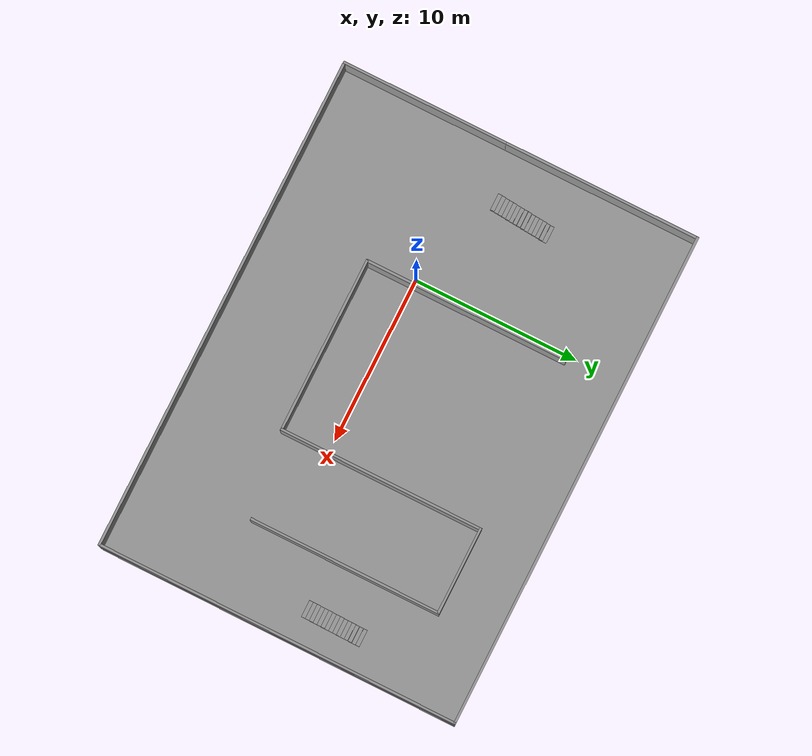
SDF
<?xml version='1.0'?>
<sdf version='1.7'>
  <model name='test'>
    <pose>6.29552 2.1311 0 0 -0 0</pose>
    <link name='Floor_0'>
      <collision name='Floor_0_Collision'>
        <geometry>
          <box>
            <size>29.75 21.75 0.1</size>
          </box>
        </geometry>
        <pose>0 0 0.05 0 -0 0</pose>
      </collision>
      <visual name='Floor_0_Visual'>
        <pose>0 0 0.05 0 -0 0</pose>
        <geometry>
          <box>
            <size>29.75 21.75 0.1</size>
          </box>
        </geometry>
        <material>
          <script>
            <uri>file://media/materials/scripts/gazebo.material</uri>
            <name>Gazebo/Grey</name>
          </script>
          <ambient>1 1 1 1</ambient>
        </material>
        <meta>
          <layer>1</layer>
        </meta>
      </visual>
      <pose>-0 0 2.5 0 -0 0</pose>
    </link>
    <link name='Stairs_0'>
      <visual name='Stairs_0_Visual_0'>
        <pose>-11.6118 3.36597 2.58333 0 -0 0</pose>
        <geometry>
          <box>
            <size>1 0.233333 0.166667</size>
          </box>
        </geometry>
        <material>
          <script>
            <uri>file://media/materials/scripts/gazebo.material</uri>
            <name>Gazebo/Grey</name>
          </script>
          <ambient>1 1 1 1</ambient>
        </material>
        <meta>
          <layer>1</layer>
        </meta>
      </visual>
      <collision name='Stairs_0_Collision_0'>
        <geometry>
          <box>
            <size>1 0.233333 0.166667</size>
          </box>
        </geometry>
        <pose>-11.6118 3.36597 2.58333 0 -0 0</pose>
      </collision>
      <visual name='Stairs_0_Visual_1'>
        <pose>-11.6118 3.13264 2.75 0 -0 0</pose>
        <geometry>
          <box>
            <size>1 0.233333 0.166667</size>
          </box>
        </geometry>
        <material>
          <script>
            <uri>file://media/materials/scripts/gazebo.material</uri>
            <name>Gazebo/Grey</name>
          </script>
          <ambient>1 1 1 1</ambient>
        </material>
        <meta>
          <layer>1</layer>
        </meta>
      </visual>
      <collision name='Stairs_0_Collision_1'>
        <geometry>
          <box>
            <size>1 0.233333 0.166667</size>
          </box>
        </geometry>
        <pose>-11.6118 3.13264 2.75 0 -0 0</pose>
      </collision>
      <visual name='Stairs_0_Visual_2'>
        <pose>-11.6118 2.8993 2.91667 0 -0 0</pose>
        <geometry>
          <box>
            <size>1 0.233333 0.166667</size>
          </box>
        </geometry>
        <material>
          <script>
            <uri>file://media/materials/scripts/gazebo.material</uri>
            <name>Gazebo/Grey</name>
          </script>
          <ambient>1 1 1 1</ambient>
        </material>
        <meta>
          <layer>1</layer>
        </meta>
      </visual>
      <collision name='Stairs_0_Collision_2'>
        <geometry>
          <box>
            <size>1 0.233333 0.166667</size>
          </box>
        </geometry>
        <pose>-11.6118 2.8993 2.91667 0 -0 0</pose>
      </collision>
      <visual name='Stairs_0_Visual_3'>
        <pose>-11.6118 2.66597 3.08333 0 -0 0</pose>
        <geometry>
          <box>
            <size>1 0.233333 0.166667</size>
          </box>
        </geometry>
        <material>
          <script>
            <uri>file://media/materials/scripts/gazebo.material</uri>
            <name>Gazebo/Grey</name>
          </script>
          <ambient>1 1 1 1</ambient>
        </material>
        <meta>
          <layer>1</layer>
        </meta>
      </visual>
      <collision name='Stairs_0_Collision_3'>
        <geometry>
          <box>
            <size>1 0.233333 0.166667</size>
          </box>
        </geometry>
        <pose>-11.6118 2.66597 3.08333 0 -0 0</pose>
      </collision>
      <visual name='Stairs_0_Visual_4'>
        <pose>-11.6118 2.43263 3.25 0 -0 0</pose>
        <geometry>
          <box>
            <size>1 0.233333 0.166667</size>
          </box>
        </geometry>
        <material>
          <script>
            <uri>file://media/materials/scripts/gazebo.material</uri>
            <name>Gazebo/Grey</name>
          </script>
          <ambient>1 1 1 1</ambient>
        </material>
        <meta>
          <layer>1</layer>
        </meta>
      </visual>
      <collision name='Stairs_0_Collision_4'>
        <geometry>
          <box>
            <size>1 0.233333 0.166667</size>
          </box>
        </geometry>
        <pose>-11.6118 2.43263 3.25 0 -0 0</pose>
      </collision>
      <visual name='Stairs_0_Visual_5'>
        <pose>-11.6118 2.1993 3.41667 0 -0 0</pose>
        <geometry>
          <box>
            <size>1 0.233333 0.166667</size>
          </box>
        </geometry>
        <material>
          <script>
            <uri>file://media/materials/scripts/gazebo.material</uri>
            <name>Gazebo/Grey</name>
          </script>
          <ambient>1 1 1 1</ambient>
        </material>
        <meta>
          <layer>1</layer>
        </meta>
      </visual>
      <collision name='Stairs_0_Collision_5'>
        <geometry>
          <box>
            <size>1 0.233333 0.166667</size>
          </box>
        </geometry>
        <pose>-11.6118 2.1993 3.41667 0 -0 0</pose>
      </collision>
      <visual name='Stairs_0_Visual_6'>
        <pose>-11.6118 1.96597 3.58333 0 -0 0</pose>
        <geometry>
          <box>
            <size>1 0.233333 0.166667</size>
          </box>
        </geometry>
        <material>
          <script>
            <uri>file://media/materials/scripts/gazebo.material</uri>
            <name>Gazebo/Grey</name>
          </script>
          <ambient>1 1 1 1</ambient>
        </material>
        <meta>
          <layer>1</layer>
        </meta>
      </visual>
      <collision name='Stairs_0_Collision_6'>
        <geometry>
          <box>
            <size>1 0.233333 0.166667</size>
          </box>
        </geometry>
        <pose>-11.6118 1.96597 3.58333 0 -0 0</pose>
      </collision>
      <visual name='Stairs_0_Visual_7'>
        <pose>-11.6118 1.73263 3.75 0 -0 0</pose>
        <geometry>
          <box>
            <size>1 0.233333 0.166667</size>
          </box>
        </geometry>
        <material>
          <script>
            <uri>file://media/materials/scripts/gazebo.material</uri>
            <name>Gazebo/Grey</name>
          </script>
          <ambient>1 1 1 1</ambient>
        </material>
        <meta>
          <layer>1</layer>
        </meta>
      </visual>
      <collision name='Stairs_0_Collision_7'>
        <geometry>
          <box>
            <size>1 0.233333 0.166667</size>
          </box>
        </geometry>
        <pose>-11.6118 1.73263 3.75 0 -0 0</pose>
      </collision>
      <visual name='Stairs_0_Visual_8'>
        <pose>-11.6118 1.4993 3.91667 0 -0 0</pose>
        <geometry>
          <box>
            <size>1 0.233333 0.166667</size>
          </box>
        </geometry>
        <material>
          <script>
            <uri>file://media/materials/scripts/gazebo.material</uri>
            <name>Gazebo/Grey</name>
          </script>
          <ambient>1 1 1 1</ambient>
        </material>
        <meta>
          <layer>1</layer>
        </meta>
      </visual>
      <collision name='Stairs_0_Collision_8'>
        <geometry>
          <box>
            <size>1 0.233333 0.166667</size>
          </box>
        </geometry>
        <pose>-11.6118 1.4993 3.91667 0 -0 0</pose>
      </collision>
      <visual name='Stairs_0_Visual_9'>
        <pose>-11.6118 1.26597 4.08333 0 -0 0</pose>
        <geometry>
          <box>
            <size>1 0.233333 0.166667</size>
          </box>
        </geometry>
        <material>
          <script>
            <uri>file://media/materials/scripts/gazebo.material</uri>
            <name>Gazebo/Grey</name>
          </script>
          <ambient>1 1 1 1</ambient>
        </material>
        <meta>
          <layer>1</layer>
        </meta>
      </visual>
      <collision name='Stairs_0_Collision_9'>
        <geometry>
          <box>
            <size>1 0.233333 0.166667</size>
          </box>
        </geometry>
        <pose>-11.6118 1.26597 4.08333 0 -0 0</pose>
      </collision>
      <visual name='Stairs_0_Visual_10'>
        <pose>-11.6118 1.03263 4.25 0 -0 0</pose>
        <geometry>
          <box>
            <size>1 0.233333 0.166667</size>
          </box>
        </geometry>
        <material>
          <script>
            <uri>file://media/materials/scripts/gazebo.material</uri>
            <name>Gazebo/Grey</name>
          </script>
          <ambient>1 1 1 1</ambient>
        </material>
        <meta>
          <layer>1</layer>
        </meta>
      </visual>
      <collision name='Stairs_0_Collision_10'>
        <geometry>
          <box>
            <size>1 0.233333 0.166667</size>
          </box>
        </geometry>
        <pose>-11.6118 1.03263 4.25 0 -0 0</pose>
      </collision>
      <visual name='Stairs_0_Visual_11'>
        <pose>-11.6118 0.799302 4.41667 0 -0 0</pose>
        <geometry>
          <box>
            <size>1 0.233333 0.166667</size>
          </box>
        </geometry>
        <material>
          <script>
            <uri>file://media/materials/scripts/gazebo.material</uri>
            <name>Gazebo/Grey</name>
          </script>
          <ambient>1 1 1 1</ambient>
        </material>
        <meta>
          <layer>1</layer>
        </meta>
      </visual>
      <collision name='Stairs_0_Collision_11'>
        <geometry>
          <box>
            <size>1 0.233333 0.166667</size>
          </box>
        </geometry>
        <pose>-11.6118 0.799302 4.41667 0 -0 0</pose>
      </collision>
      <visual name='Stairs_0_Visual_12'>
        <pose>-11.6118 0.565968 4.58333 0 -0 0</pose>
        <geometry>
          <box>
            <size>1 0.233333 0.166667</size>
          </box>
        </geometry>
        <material>
          <script>
            <uri>file://media/materials/scripts/gazebo.material</uri>
            <name>Gazebo/Grey</name>
          </script>
          <ambient>1 1 1 1</ambient>
        </material>
        <meta>
          <layer>1</layer>
        </meta>
      </visual>
      <collision name='Stairs_0_Collision_12'>
        <geometry>
          <box>
            <size>1 0.233333 0.166667</size>
          </box>
        </geometry>
        <pose>-11.6118 0.565968 4.58333 0 -0 0</pose>
      </collision>
      <visual name='Stairs_0_Visual_13'>
        <pose>-11.6118 0.332635 4.75 0 -0 0</pose>
        <geometry>
          <box>
            <size>1 0.233333 0.166667</size>
          </box>
        </geometry>
        <material>
          <script>
            <uri>file://media/materials/scripts/gazebo.material</uri>
            <name>Gazebo/Grey</name>
          </script>
          <ambient>1 1 1 1</ambient>
        </material>
        <meta>
          <layer>1</layer>
        </meta>
      </visual>
      <collision name='Stairs_0_Collision_13'>
        <geometry>
          <box>
            <size>1 0.233333 0.166667</size>
          </box>
        </geometry>
        <pose>-11.6118 0.332635 4.75 0 -0 0</pose>
      </collision>
      <visual name='Stairs_0_Visual_14'>
        <pose>-11.6118 0.099302 4.91667 0 -0 0</pose>
        <geometry>
          <box>
            <size>1 0.233333 0.166667</size>
          </box>
        </geometry>
        <material>
          <script>
            <uri>file://media/materials/scripts/gazebo.material</uri>
            <name>Gazebo/Grey</name>
          </script>
          <ambient>1 1 1 1</ambient>
        </material>
        <meta>
          <layer>1</layer>
        </meta>
      </visual>
      <collision name='Stairs_0_Collision_14'>
        <geometry>
          <box>
            <size>1 0.233333 0.166667</size>
          </box>
        </geometry>
        <pose>-11.6118 0.099302 4.91667 0 -0 0</pose>
      </collision>
    </link>
    <link name='Stairs_1'>
      <visual name='Stairs_1_Visual_0'>
        <pose>12.8702 4.1443 2.58333 0 -0 0</pose>
        <geometry>
          <box>
            <size>1 0.233333 0.166667</size>
          </box>
        </geometry>
        <material>
          <script>
            <uri>file://media/materials/scripts/gazebo.material</uri>
            <name>Gazebo/Grey</name>
          </script>
          <ambient>1 1 1 1</ambient>
        </material>
        <meta>
          <layer>1</layer>
        </meta>
      </visual>
      <collision name='Stairs_1_Collision_0'>
        <geometry>
          <box>
            <size>1 0.233333 0.166667</size>
          </box>
        </geometry>
        <pose>12.8702 4.1443 2.58333 0 -0 0</pose>
      </collision>
      <visual name='Stairs_1_Visual_1'>
        <pose>12.8702 3.91096 2.75 0 -0 0</pose>
        <geometry>
          <box>
            <size>1 0.233333 0.166667</size>
          </box>
        </geometry>
        <material>
          <script>
            <uri>file://media/materials/scripts/gazebo.material</uri>
            <name>Gazebo/Grey</name>
          </script>
          <ambient>1 1 1 1</ambient>
        </material>
        <meta>
          <layer>1</layer>
        </meta>
      </visual>
      <collision name='Stairs_1_Collision_1'>
        <geometry>
          <box>
            <size>1 0.233333 0.166667</size>
          </box>
        </geometry>
        <pose>12.8702 3.91096 2.75 0 -0 0</pose>
      </collision>
      <visual name='Stairs_1_Visual_2'>
        <pose>12.8702 3.67763 2.91667 0 -0 0</pose>
        <geometry>
          <box>
            <size>1 0.233333 0.166667</size>
          </box>
        </geometry>
        <material>
          <script>
            <uri>file://media/materials/scripts/gazebo.material</uri>
            <name>Gazebo/Grey</name>
          </script>
          <ambient>1 1 1 1</ambient>
        </material>
        <meta>
          <layer>1</layer>
        </meta>
      </visual>
      <collision name='Stairs_1_Collision_2'>
        <geometry>
          <box>
            <size>1 0.233333 0.166667</size>
          </box>
        </geometry>
        <pose>12.8702 3.67763 2.91667 0 -0 0</pose>
      </collision>
      <visual name='Stairs_1_Visual_3'>
        <pose>12.8702 3.4443 3.08333 0 -0 0</pose>
        <geometry>
          <box>
            <size>1 0.233333 0.166667</size>
          </box>
        </geometry>
        <material>
          <script>
            <uri>file://media/materials/scripts/gazebo.material</uri>
            <name>Gazebo/Grey</name>
          </script>
          <ambient>1 1 1 1</ambient>
        </material>
        <meta>
          <layer>1</layer>
        </meta>
      </visual>
      <collision name='Stairs_1_Collision_3'>
        <geometry>
          <box>
            <size>1 0.233333 0.166667</size>
          </box>
        </geometry>
        <pose>12.8702 3.4443 3.08333 0 -0 0</pose>
      </collision>
      <visual name='Stairs_1_Visual_4'>
        <pose>12.8702 3.21096 3.25 0 -0 0</pose>
        <geometry>
          <box>
            <size>1 0.233333 0.166667</size>
          </box>
        </geometry>
        <material>
          <script>
            <uri>file://media/materials/scripts/gazebo.material</uri>
            <name>Gazebo/Grey</name>
          </script>
          <ambient>1 1 1 1</ambient>
        </material>
        <meta>
          <layer>1</layer>
        </meta>
      </visual>
      <collision name='Stairs_1_Collision_4'>
        <geometry>
          <box>
            <size>1 0.233333 0.166667</size>
          </box>
        </geometry>
        <pose>12.8702 3.21096 3.25 0 -0 0</pose>
      </collision>
      <visual name='Stairs_1_Visual_5'>
        <pose>12.8702 2.97763 3.41667 0 -0 0</pose>
        <geometry>
          <box>
            <size>1 0.233333 0.166667</size>
          </box>
        </geometry>
        <material>
          <script>
            <uri>file://media/materials/scripts/gazebo.material</uri>
            <name>Gazebo/Grey</name>
          </script>
          <ambient>1 1 1 1</ambient>
        </material>
        <meta>
          <layer>1</layer>
        </meta>
      </visual>
      <collision name='Stairs_1_Collision_5'>
        <geometry>
          <box>
            <size>1 0.233333 0.166667</size>
          </box>
        </geometry>
        <pose>12.8702 2.97763 3.41667 0 -0 0</pose>
      </collision>
      <visual name='Stairs_1_Visual_6'>
        <pose>12.8702 2.7443 3.58333 0 -0 0</pose>
        <geometry>
          <box>
            <size>1 0.233333 0.166667</size>
          </box>
        </geometry>
        <material>
          <script>
            <uri>file://media/materials/scripts/gazebo.material</uri>
            <name>Gazebo/Grey</name>
          </script>
          <ambient>1 1 1 1</ambient>
        </material>
        <meta>
          <layer>1</layer>
        </meta>
      </visual>
      <collision name='Stairs_1_Collision_6'>
        <geometry>
          <box>
            <size>1 0.233333 0.166667</size>
          </box>
        </geometry>
        <pose>12.8702 2.7443 3.58333 0 -0 0</pose>
      </collision>
      <visual name='Stairs_1_Visual_7'>
        <pose>12.8702 2.51096 3.75 0 -0 0</pose>
        <geometry>
          <box>
            <size>1 0.233333 0.166667</size>
          </box>
        </geometry>
        <material>
          <script>
            <uri>file://media/materials/scripts/gazebo.material</uri>
            <name>Gazebo/Grey</name>
          </script>
          <ambient>1 1 1 1</ambient>
        </material>
        <meta>
          <layer>1</layer>
        </meta>
      </visual>
      <collision name='Stairs_1_Collision_7'>
        <geometry>
          <box>
            <size>1 0.233333 0.166667</size>
          </box>
        </geometry>
        <pose>12.8702 2.51096 3.75 0 -0 0</pose>
      </collision>
      <visual name='Stairs_1_Visual_8'>
        <pose>12.8702 2.27763 3.91667 0 -0 0</pose>
        <geometry>
          <box>
            <size>1 0.233333 0.166667</size>
          </box>
        </geometry>
        <material>
          <script>
            <uri>file://media/materials/scripts/gazebo.material</uri>
            <name>Gazebo/Grey</name>
          </script>
          <ambient>1 1 1 1</ambient>
        </material>
        <meta>
          <layer>1</layer>
        </meta>
      </visual>
      <collision name='Stairs_1_Collision_8'>
        <geometry>
          <box>
            <size>1 0.233333 0.166667</size>
          </box>
        </geometry>
        <pose>12.8702 2.27763 3.91667 0 -0 0</pose>
      </collision>
      <visual name='Stairs_1_Visual_9'>
        <pose>12.8702 2.0443 4.08333 0 -0 0</pose>
        <geometry>
          <box>
            <size>1 0.233333 0.166667</size>
          </box>
        </geometry>
        <material>
          <script>
            <uri>file://media/materials/scripts/gazebo.material</uri>
            <name>Gazebo/Grey</name>
          </script>
          <ambient>1 1 1 1</ambient>
        </material>
        <meta>
          <layer>1</layer>
        </meta>
      </visual>
      <collision name='Stairs_1_Collision_9'>
        <geometry>
          <box>
            <size>1 0.233333 0.166667</size>
          </box>
        </geometry>
        <pose>12.8702 2.0443 4.08333 0 -0 0</pose>
      </collision>
      <visual name='Stairs_1_Visual_10'>
        <pose>12.8702 1.81096 4.25 0 -0 0</pose>
        <geometry>
          <box>
            <size>1 0.233333 0.166667</size>
          </box>
        </geometry>
        <material>
          <script>
            <uri>file://media/materials/scripts/gazebo.material</uri>
            <name>Gazebo/Grey</name>
          </script>
          <ambient>1 1 1 1</ambient>
        </material>
        <meta>
          <layer>1</layer>
        </meta>
      </visual>
      <collision name='Stairs_1_Collision_10'>
        <geometry>
          <box>
            <size>1 0.233333 0.166667</size>
          </box>
        </geometry>
        <pose>12.8702 1.81096 4.25 0 -0 0</pose>
      </collision>
      <visual name='Stairs_1_Visual_11'>
        <pose>12.8702 1.57763 4.41667 0 -0 0</pose>
        <geometry>
          <box>
            <size>1 0.233333 0.166667</size>
          </box>
        </geometry>
        <material>
          <script>
            <uri>file://media/materials/scripts/gazebo.material</uri>
            <name>Gazebo/Grey</name>
          </script>
          <ambient>1 1 1 1</ambient>
        </material>
        <meta>
          <layer>1</layer>
        </meta>
      </visual>
      <collision name='Stairs_1_Collision_11'>
        <geometry>
          <box>
            <size>1 0.233333 0.166667</size>
          </box>
        </geometry>
        <pose>12.8702 1.57763 4.41667 0 -0 0</pose>
      </collision>
      <visual name='Stairs_1_Visual_12'>
        <pose>12.8702 1.3443 4.58333 0 -0 0</pose>
        <geometry>
          <box>
            <size>1 0.233333 0.166667</size>
          </box>
        </geometry>
        <material>
          <script>
            <uri>file://media/materials/scripts/gazebo.material</uri>
            <name>Gazebo/Grey</name>
          </script>
          <ambient>1 1 1 1</ambient>
        </material>
        <meta>
          <layer>1</layer>
        </meta>
      </visual>
      <collision name='Stairs_1_Collision_12'>
        <geometry>
          <box>
            <size>1 0.233333 0.166667</size>
          </box>
        </geometry>
        <pose>12.8702 1.3443 4.58333 0 -0 0</pose>
      </collision>
      <visual name='Stairs_1_Visual_13'>
        <pose>12.8702 1.11096 4.75 0 -0 0</pose>
        <geometry>
          <box>
            <size>1 0.233333 0.166667</size>
          </box>
        </geometry>
        <material>
          <script>
            <uri>file://media/materials/scripts/gazebo.material</uri>
            <name>Gazebo/Grey</name>
          </script>
          <ambient>1 1 1 1</ambient>
        </material>
        <meta>
          <layer>1</layer>
        </meta>
      </visual>
      <collision name='Stairs_1_Collision_13'>
        <geometry>
          <box>
            <size>1 0.233333 0.166667</size>
          </box>
        </geometry>
        <pose>12.8702 1.11096 4.75 0 -0 0</pose>
      </collision>
      <visual name='Stairs_1_Visual_14'>
        <pose>12.8702 0.877629 4.91667 0 -0 0</pose>
        <geometry>
          <box>
            <size>1 0.233333 0.166667</size>
          </box>
        </geometry>
        <material>
          <script>
            <uri>file://media/materials/scripts/gazebo.material</uri>
            <name>Gazebo/Grey</name>
          </script>
          <ambient>1 1 1 1</ambient>
        </material>
        <meta>
          <layer>1</layer>
        </meta>
      </visual>
      <collision name='Stairs_1_Collision_14'>
        <geometry>
          <box>
            <size>1 0.233333 0.166667</size>
          </box>
        </geometry>
        <pose>12.8702 0.877629 4.91667 0 -0 0</pose>
      </collision>
    </link>
    <link name='Wall_0'>
      <collision name='Wall_0_Collision'>
        <geometry>
          <box>
            <size>10 0.15 2.5</size>
          </box>
        </geometry>
        <pose>0 0 1.25 0 -0 0</pose>
      </collision>
      <visual name='Wall_0_Visual'>
        <pose>0 0 1.25 0 -0 0</pose>
        <geometry>
          <box>
            <size>10 0.15 2.5</size>
          </box>
        </geometry>
        <material>
          <script>
            <uri>file://media/materials/scripts/gazebo.material</uri>
            <name>Gazebo/Grey</name>
          </script>
          <ambient>1 1 1 1</ambient>
        </material>
        <meta>
          <layer>0</layer>
        </meta>
      </visual>
      <pose>-14.8 -5.875 0 0 -0 -1.5708</pose>
    </link>
    <link name='Wall_1'>
      <collision name='Wall_1_Collision'>
        <geometry>
          <box>
            <size>29.75 0.15 2.5</size>
          </box>
        </geometry>
        <pose>0 0 1.25 0 -0 0</pose>
      </collision>
      <visual name='Wall_1_Visual'>
        <pose>0 0 1.25 0 -0 0</pose>
        <geometry>
          <box>
            <size>29.75 0.15 2.5</size>
          </box>
        </geometry>
        <material>
          <script>
            <uri>file://media/materials/scripts/gazebo.material</uri>
            <name>Gazebo/Grey</name>
          </script>
          <ambient>1 1 1 1</ambient>
        </material>
        <meta>
          <layer>0</layer>
        </meta>
      </visual>
      <pose>-0 -10.8 0 0 -0 0</pose>
    </link>
    <link name='Wall_10'>
      <collision name='Wall_10_Collision'>
        <geometry>
          <box>
            <size>11.9 0.15 2.5</size>
          </box>
        </geometry>
        <pose>0 0 1.25 0 -0 0</pose>
      </collision>
      <visual name='Wall_10_Visual'>
        <pose>0 0 1.25 0 -0 0</pose>
        <geometry>
          <box>
            <size>11.9 0.15 2.5</size>
          </box>
        </geometry>
        <material>
          <script>
            <uri>file://media/materials/scripts/gazebo.material</uri>
            <name>Gazebo/Grey</name>
          </script>
          <ambient>1 1 1 1</ambient>
        </material>
        <meta>
          <layer>1</layer>
        </meta>
      </visual>
      <pose>-14.8 4.925 2.5 0 -0 -1.5708</pose>
    </link>
    <link name='Wall_11'>
      <collision name='Wall_11_Collision'>
        <geometry>
          <box>
            <size>12.25 0.15 2.5</size>
          </box>
        </geometry>
        <pose>0 0 1.25 0 -0 0</pose>
      </collision>
      <visual name='Wall_11_Visual'>
        <pose>0 0 1.25 0 -0 0</pose>
        <geometry>
          <box>
            <size>12.25 0.15 2.5</size>
          </box>
        </geometry>
        <material>
          <script>
            <uri>file://media/materials/scripts/gazebo.material</uri>
            <name>Gazebo/Grey</name>
          </script>
          <ambient>1 1 1 1</ambient>
        </material>
        <meta>
          <layer>1</layer>
        </meta>
      </visual>
      <pose>-5.59743 1.27244 2.5 0 -0 -1.5708</pose>
    </link>
    <link name='Wall_12'>
      <collision name='Wall_12_Collision'>
        <geometry>
          <box>
            <size>10.5 0.15 2.5</size>
          </box>
        </geometry>
        <pose>0 0 1.25 0 -0 0</pose>
      </collision>
      <visual name='Wall_12_Visual'>
        <pose>0 0 1.25 0 -0 0</pose>
        <geometry>
          <box>
            <size>10.5 0.15 2.5</size>
          </box>
        </geometry>
        <material>
          <script>
            <uri>file://media/materials/scripts/gazebo.material</uri>
            <name>Gazebo/Grey</name>
          </script>
          <ambient>1 1 1 1</ambient>
        </material>
        <meta>
          <layer>1</layer>
        </meta>
      </visual>
      <pose>-0.422425 -4.77756 2.5 0 -0 0</pose>
    </link>
    <link name='Wall_13'>
      <collision name='Wall_13_Collision'>
        <geometry>
          <box>
            <size>12.25 0.15 2.5</size>
          </box>
        </geometry>
        <pose>0 0 1.25 0 -0 0</pose>
      </collision>
      <visual name='Wall_13_Visual'>
        <pose>0 0 1.25 0 -0 0</pose>
        <geometry>
          <box>
            <size>12.25 0.15 2.5</size>
          </box>
        </geometry>
        <material>
          <script>
            <uri>file://media/materials/scripts/gazebo.material</uri>
            <name>Gazebo/Grey</name>
          </script>
          <ambient>1 1 1 1</ambient>
        </material>
        <meta>
          <layer>1</layer>
        </meta>
      </visual>
      <pose>4.75258 1.27244 2.5 0 -0 1.5708</pose>
    </link>
    <link name='Wall_14'>
      <collision name='Wall_14_Collision'>
        <geometry>
          <box>
            <size>5.25 0.15 2.5</size>
          </box>
        </geometry>
        <pose>0 0 1.25 0 -0 0</pose>
      </collision>
      <visual name='Wall_14_Visual'>
        <pose>0 0 1.25 0 -0 0</pose>
        <geometry>
          <box>
            <size>5.25 0.15 2.5</size>
          </box>
        </geometry>
        <material>
          <script>
            <uri>file://media/materials/scripts/gazebo.material</uri>
            <name>Gazebo/Grey</name>
          </script>
          <ambient>1 1 1 1</ambient>
        </material>
        <meta>
          <layer>1</layer>
        </meta>
      </visual>
      <pose>7.30258 7.32244 2.5 0 -0 0</pose>
    </link>
    <link name='Wall_15'>
      <collision name='Wall_15_Collision'>
        <geometry>
          <box>
            <size>11.5 0.15 2.5</size>
          </box>
        </geometry>
        <pose>0 0 1.25 0 -0 0</pose>
      </collision>
      <visual name='Wall_15_Visual'>
        <pose>0 0 1.25 0 -0 0</pose>
        <geometry>
          <box>
            <size>11.5 0.15 2.5</size>
          </box>
        </geometry>
        <material>
          <script>
            <uri>file://media/materials/scripts/gazebo.material</uri>
            <name>Gazebo/Grey</name>
          </script>
          <ambient>1 1 1 1</ambient>
        </material>
        <meta>
          <layer>1</layer>
        </meta>
      </visual>
      <pose>9.85257 1.64744 2.5 0 -0 -1.5708</pose>
    </link>
    <link name='Wall_2'>
      <collision name='Wall_2_Collision'>
        <geometry>
          <box>
            <size>21.75 0.15 2.5</size>
          </box>
        </geometry>
        <pose>0 0 1.25 0 -0 0</pose>
      </collision>
      <visual name='Wall_2_Visual'>
        <pose>0 0 1.25 0 -0 0</pose>
        <geometry>
          <box>
            <size>21.75 0.15 2.5</size>
          </box>
        </geometry>
        <material>
          <script>
            <uri>file://media/materials/scripts/gazebo.material</uri>
            <name>Gazebo/Grey</name>
          </script>
          <ambient>1 1 1 1</ambient>
        </material>
        <meta>
          <layer>0</layer>
        </meta>
      </visual>
      <pose>14.8 0 0 0 -0 1.5708</pose>
    </link>
    <link name='Wall_3'>
      <collision name='Wall_3_Collision'>
        <geometry>
          <box>
            <size>29.75 0.15 2.5</size>
          </box>
        </geometry>
        <pose>0 0 1.25 0 -0 0</pose>
      </collision>
      <visual name='Wall_3_Visual'>
        <pose>0 0 1.25 0 -0 0</pose>
        <geometry>
          <box>
            <size>29.75 0.15 2.5</size>
          </box>
        </geometry>
        <material>
          <script>
            <uri>file://media/materials/scripts/gazebo.material</uri>
            <name>Gazebo/Grey</name>
          </script>
          <ambient>1 1 1 1</ambient>
        </material>
        <meta>
          <layer>0</layer>
        </meta>
      </visual>
      <pose>-0 10.8 0 0 -0 3.14159</pose>
    </link>
    <link name='Wall_4'>
      <collision name='Wall_4_Collision'>
        <geometry>
          <box>
            <size>11.9 0.15 2.5</size>
          </box>
        </geometry>
        <pose>0 0 1.25 0 -0 0</pose>
      </collision>
      <visual name='Wall_4_Visual'>
        <pose>0 0 1.25 0 -0 0</pose>
        <geometry>
          <box>
            <size>11.9 0.15 2.5</size>
          </box>
        </geometry>
        <material>
          <script>
            <uri>file://media/materials/scripts/gazebo.material</uri>
            <name>Gazebo/Grey</name>
          </script>
          <ambient>1 1 1 1</ambient>
        </material>
        <meta>
          <layer>0</layer>
        </meta>
      </visual>
      <pose>-14.8 4.925 0 0 -0 -1.5708</pose>
    </link>
    <link name='Wall_6'>
      <collision name='Wall_6_Collision'>
        <geometry>
          <box>
            <size>10 0.15 2.5</size>
          </box>
        </geometry>
        <pose>0 0 1.25 0 -0 0</pose>
      </collision>
      <visual name='Wall_6_Visual'>
        <pose>0 0 1.25 0 -0 0</pose>
        <geometry>
          <box>
            <size>10 0.15 2.5</size>
          </box>
        </geometry>
        <material>
          <script>
            <uri>file://media/materials/scripts/gazebo.material</uri>
            <name>Gazebo/Grey</name>
          </script>
          <ambient>1 1 1 1</ambient>
        </material>
        <meta>
          <layer>1</layer>
        </meta>
      </visual>
      <pose>-14.8 -5.875 2.5 0 -0 -1.5708</pose>
    </link>
    <link name='Wall_7'>
      <collision name='Wall_7_Collision'>
        <geometry>
          <box>
            <size>29.75 0.15 2.5</size>
          </box>
        </geometry>
        <pose>0 0 1.25 0 -0 0</pose>
      </collision>
      <visual name='Wall_7_Visual'>
        <pose>0 0 1.25 0 -0 0</pose>
        <geometry>
          <box>
            <size>29.75 0.15 2.5</size>
          </box>
        </geometry>
        <material>
          <script>
            <uri>file://media/materials/scripts/gazebo.material</uri>
            <name>Gazebo/Grey</name>
          </script>
          <ambient>1 1 1 1</ambient>
        </material>
        <meta>
          <layer>1</layer>
        </meta>
      </visual>
      <pose>0 -10.8 2.5 0 -0 0</pose>
    </link>
    <link name='Wall_8'>
      <collision name='Wall_8_Collision'>
        <geometry>
          <box>
            <size>21.75 0.15 2.5</size>
          </box>
        </geometry>
        <pose>0 0 1.25 0 -0 0</pose>
      </collision>
      <visual name='Wall_8_Visual'>
        <pose>0 0 1.25 0 -0 0</pose>
        <geometry>
          <box>
            <size>21.75 0.15 2.5</size>
          </box>
        </geometry>
        <material>
          <script>
            <uri>file://media/materials/scripts/gazebo.material</uri>
            <name>Gazebo/Grey</name>
          </script>
          <ambient>1 1 1 1</ambient>
        </material>
        <meta>
          <layer>1</layer>
        </meta>
      </visual>
      <pose>14.8 0 2.5 0 -0 1.5708</pose>
    </link>
    <link name='Wall_9'>
      <collision name='Wall_9_Collision'>
        <geometry>
          <box>
            <size>29.75 0.15 2.5</size>
          </box>
        </geometry>
        <pose>0 0 1.25 0 -0 0</pose>
      </collision>
      <visual name='Wall_9_Visual'>
        <pose>0 0 1.25 0 -0 0</pose>
        <geometry>
          <box>
            <size>29.75 0.15 2.5</size>
          </box>
        </geometry>
        <material>
          <script>
            <uri>file://media/materials/scripts/gazebo.material</uri>
            <name>Gazebo/Grey</name>
          </script>
          <ambient>1 1 1 1</ambient>
        </material>
        <meta>
          <layer>1</layer>
        </meta>
      </visual>
      <pose>0 10.8 2.5 0 -0 3.14159</pose>
    </link>
    <static>1</static>
  </model>
</sdf>
